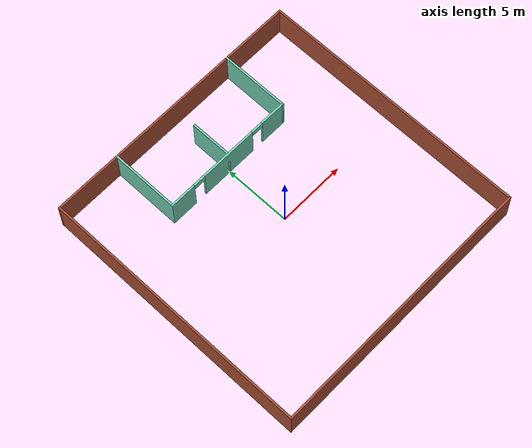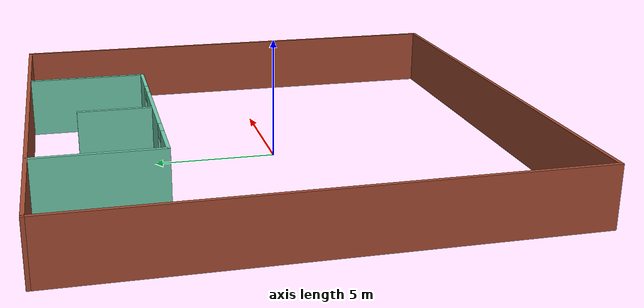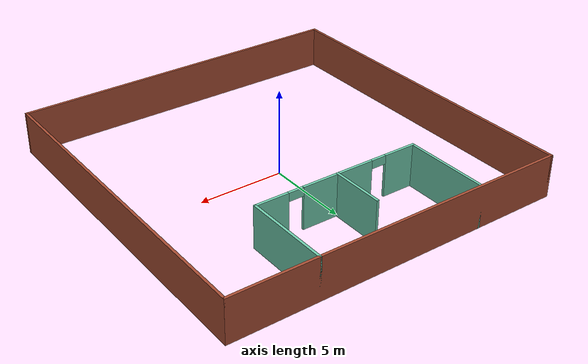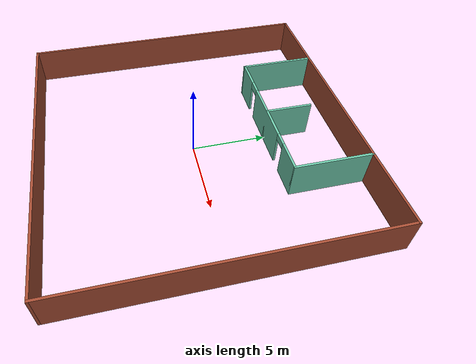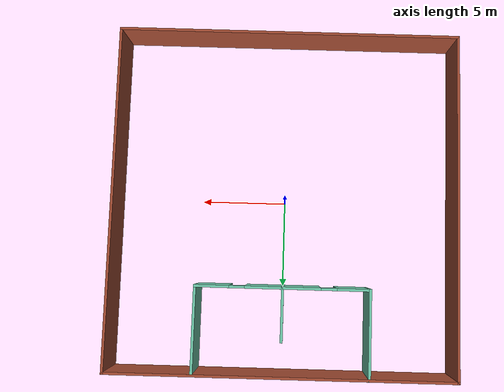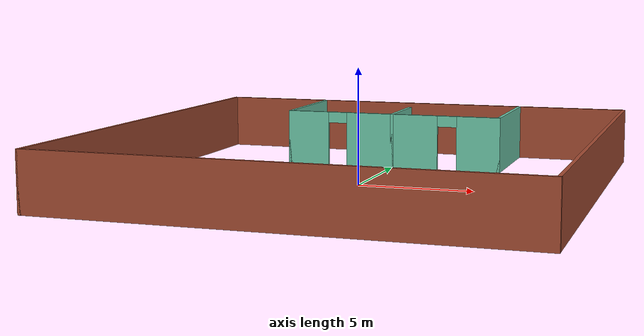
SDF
<?xml version='1.0'?>
<sdf version='1.6'>
  <model name='Room'>
    <pose frame=''>0 0 0 0 -0 0</pose>
    <link name='Wall_0'>
      <collision name='Wall_0_Collision'>
        <geometry>
          <box>
            <size>20.15 0.15 2.5</size>
          </box>
        </geometry>
        <pose frame=''>0 0 1.25 0 -0 0</pose>
      </collision>
      <visual name='Wall_0_Visual'>
        <pose frame=''>0 0 1.25 0 -0 0</pose>
        <geometry>
          <box>
            <size>20.15 0.15 2.5</size>
          </box>
        </geometry>
        <material>
          <script>
            <uri>file://media/materials/scripts/gazebo.material</uri>
            <name>Gazebo/Bricks</name>
          </script>
          <ambient>1 1 1 1</ambient>
        </material>
        <meta>
          <layer>0</layer>
        </meta>
      </visual>
      <pose frame=''>-10 0 0 0 -0 -1.5708</pose>
    </link>
    <link name='Wall_10'>
      <collision name='Wall_10_Collision'>
        <geometry>
          <box>
            <size>5.15 0.15 2.5</size>
          </box>
        </geometry>
        <pose frame=''>0 0 1.25 0 -0 0</pose>
      </collision>
      <visual name='Wall_10_Visual'>
        <pose frame=''>0 0 1.25 0 -0 0</pose>
        <geometry>
          <box>
            <size>5.15 0.15 2.5</size>
          </box>
        </geometry>
        <material>
          <script>
            <uri>file://media/materials/scripts/gazebo.material</uri>
            <name>Gazebo/Grey</name>
          </script>
          <ambient>0.435294 0.796078 0.67451 1</ambient>
        </material>
        <meta>
          <layer>0</layer>
        </meta>
      </visual>
      <pose frame=''>5 7.5 0 0 -0 1.5708</pose>
    </link>
    <link name='Wall_12'>
      <collision name='Wall_12_Collision'>
        <geometry>
          <box>
            <size>3.15 0.15 2.5</size>
          </box>
        </geometry>
        <pose frame=''>0 0 1.25 0 -0 0</pose>
      </collision>
      <visual name='Wall_12_Visual'>
        <pose frame=''>0 0 1.25 0 -0 0</pose>
        <geometry>
          <box>
            <size>3.15 0.15 2.5</size>
          </box>
        </geometry>
        <material>
          <script>
            <uri>file://media/materials/scripts/gazebo.material</uri>
            <name>Gazebo/Grey</name>
          </script>
          <ambient>0.435294 0.796078 0.67451 1</ambient>
        </material>
        <meta>
          <layer>0</layer>
        </meta>
      </visual>
      <pose frame=''>0 6.5 0 0 -0 1.5708</pose>
    </link>
    <link name='Wall_2'>
      <collision name='Wall_2_Collision'>
        <geometry>
          <box>
            <size>20.15 0.15 2.5</size>
          </box>
        </geometry>
        <pose frame=''>0 0 1.25 0 -0 0</pose>
      </collision>
      <visual name='Wall_2_Visual'>
        <pose frame=''>0 0 1.25 0 -0 0</pose>
        <geometry>
          <box>
            <size>20.15 0.15 2.5</size>
          </box>
        </geometry>
        <material>
          <script>
            <uri>file://media/materials/scripts/gazebo.material</uri>
            <name>Gazebo/Bricks</name>
          </script>
          <ambient>1 1 1 1</ambient>
        </material>
        <meta>
          <layer>0</layer>
        </meta>
      </visual>
      <pose frame=''>0 10 0 0 -0 0</pose>
    </link>
    <link name='Wall_4'>
      <collision name='Wall_4_Collision'>
        <geometry>
          <box>
            <size>20.15 0.15 2.5</size>
          </box>
        </geometry>
        <pose frame=''>0 0 1.25 0 -0 0</pose>
      </collision>
      <visual name='Wall_4_Visual'>
        <pose frame=''>0 0 1.25 0 -0 0</pose>
        <geometry>
          <box>
            <size>20.15 0.15 2.5</size>
          </box>
        </geometry>
        <material>
          <script>
            <uri>file://media/materials/scripts/gazebo.material</uri>
            <name>Gazebo/Bricks</name>
          </script>
          <ambient>1 1 1 1</ambient>
        </material>
        <meta>
          <layer>0</layer>
        </meta>
      </visual>
      <pose frame=''>10 0 0 0 -0 -1.5708</pose>
    </link>
    <link name='Wall_6'>
      <collision name='Wall_6_Collision'>
        <geometry>
          <box>
            <size>20.15 0.15 2.5</size>
          </box>
        </geometry>
        <pose frame=''>0 0 1.25 0 -0 0</pose>
      </collision>
      <visual name='Wall_6_Visual'>
        <pose frame=''>0 0 1.25 0 -0 0</pose>
        <geometry>
          <box>
            <size>20.15 0.15 2.5</size>
          </box>
        </geometry>
        <material>
          <script>
            <uri>file://media/materials/scripts/gazebo.material</uri>
            <name>Gazebo/Bricks</name>
          </script>
          <ambient>1 1 1 1</ambient>
        </material>
        <meta>
          <layer>0</layer>
        </meta>
      </visual>
      <pose frame=''>0 -10 0 0 -0 0</pose>
    </link>
    <link name='Wall_8'>
      <collision name='Wall_8_Collision'>
        <geometry>
          <box>
            <size>5.15 0.15 2.5</size>
          </box>
        </geometry>
        <pose frame=''>0 0 1.25 0 -0 0</pose>
      </collision>
      <visual name='Wall_8_Visual'>
        <pose frame=''>0 0 1.25 0 -0 0</pose>
        <geometry>
          <box>
            <size>5.15 0.15 2.5</size>
          </box>
        </geometry>
        <material>
          <script>
            <uri>file://media/materials/scripts/gazebo.material</uri>
            <name>Gazebo/Grey</name>
          </script>
          <ambient>0.435294 0.796078 0.67451 1</ambient>
        </material>
        <meta>
          <layer>0</layer>
        </meta>
      </visual>
      <pose frame=''>-5 7.5 0 0 -0 -1.5708</pose>
    </link>
    <link name='Wall_9'>
      <pose frame=''>0 5 0 0 -0 0</pose>
      <visual name='Wall_9_Visual_0'>
        <pose frame=''>-4.07964 0 1.25 0 -0 0</pose>
        <geometry>
          <box>
            <size>1.99073 0.15 2.5</size>
          </box>
        </geometry>
        <material>
          <script>
            <uri>file://media/materials/scripts/gazebo.material</uri>
            <name>Gazebo/Grey</name>
          </script>
          <ambient>0.435294 0.796078 0.67451 1</ambient>
        </material>
        <meta>
          <layer>0</layer>
        </meta>
      </visual>
      <collision name='Wall_9_Collision_0'>
        <geometry>
          <box>
            <size>1.99073 0.15 2.5</size>
          </box>
        </geometry>
        <pose frame=''>-4.07964 0 1.25 0 -0 0</pose>
      </collision>
      <visual name='Wall_9_Visual_1'>
        <pose frame=''>-0.008186 0 1.25 0 -0 0</pose>
        <geometry>
          <box>
            <size>4.35217 0.15 2.5</size>
          </box>
        </geometry>
        <material>
          <script>
            <uri>file://media/materials/scripts/gazebo.material</uri>
            <name>Gazebo/Grey</name>
          </script>
          <ambient>0.435294 0.796078 0.67451 1</ambient>
        </material>
        <meta>
          <layer>0</layer>
        </meta>
      </visual>
      <collision name='Wall_9_Collision_1'>
        <geometry>
          <box>
            <size>4.35217 0.15 2.5</size>
          </box>
        </geometry>
        <pose frame=''>-0.008186 0 1.25 0 -0 0</pose>
      </collision>
      <visual name='Wall_9_Visual_2'>
        <pose frame=''>4.07145 0 1.25 0 -0 0</pose>
        <geometry>
          <box>
            <size>2.0071 0.15 2.5</size>
          </box>
        </geometry>
        <material>
          <script>
            <uri>file://media/materials/scripts/gazebo.material</uri>
            <name>Gazebo/Grey</name>
          </script>
          <ambient>0.435294 0.796078 0.67451 1</ambient>
        </material>
        <meta>
          <layer>0</layer>
        </meta>
      </visual>
      <collision name='Wall_9_Collision_2'>
        <geometry>
          <box>
            <size>2.0071 0.15 2.5</size>
          </box>
        </geometry>
        <pose frame=''>4.07145 0 1.25 0 -0 0</pose>
      </collision>
      <visual name='Wall_9_Visual_3'>
        <pose frame=''>-2.63427 0 2.25 0 -0 0</pose>
        <geometry>
          <box>
            <size>0.9 0.15 0.5</size>
          </box>
        </geometry>
        <material>
          <script>
            <uri>file://media/materials/scripts/gazebo.material</uri>
            <name>Gazebo/Grey</name>
          </script>
          <ambient>0.435294 0.796078 0.67451 1</ambient>
        </material>
        <meta>
          <layer>0</layer>
        </meta>
      </visual>
      <collision name='Wall_9_Collision_3'>
        <geometry>
          <box>
            <size>0.9 0.15 0.5</size>
          </box>
        </geometry>
        <pose frame=''>-2.63427 0 2.25 0 -0 0</pose>
      </collision>
      <visual name='Wall_9_Visual_4'>
        <pose frame=''>2.6179 0 2.25 0 -0 0</pose>
        <geometry>
          <box>
            <size>0.9 0.15 0.5</size>
          </box>
        </geometry>
        <material>
          <script>
            <uri>file://media/materials/scripts/gazebo.material</uri>
            <name>Gazebo/Grey</name>
          </script>
          <ambient>0.435294 0.796078 0.67451 1</ambient>
        </material>
        <meta>
          <layer>0</layer>
        </meta>
      </visual>
      <collision name='Wall_9_Collision_4'>
        <geometry>
          <box>
            <size>0.9 0.15 0.5</size>
          </box>
        </geometry>
        <pose frame=''>2.6179 0 2.25 0 -0 0</pose>
      </collision>
    </link>
    <static>1</static>
  </model>
</sdf>
